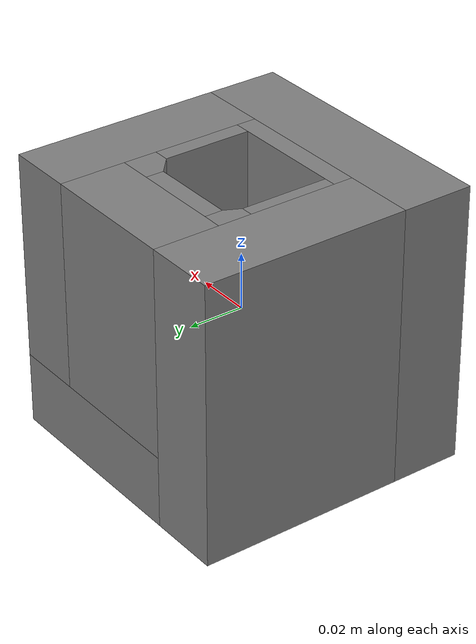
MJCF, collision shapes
<mujoco model="cuboid">
  <asset>
    <mesh file="meshes/cuboid.stl" name="cuboid_visual" scale="0.001 0.001 0.001"/>

    <mesh file="meshes/cuboid_convex_0.stl" name="cuboid_col_0" scale="0.001 0.001 0.001"/>
    <mesh file="meshes/cuboid_convex_1.stl" name="cuboid_col_1" scale="0.001 0.001 0.001"/>
    <mesh file="meshes/cuboid_convex_2.stl" name="cuboid_col_2" scale="0.001 0.001 0.001"/>
    <mesh file="meshes/cuboid_convex_3.stl" name="cuboid_col_3" scale="0.001 0.001 0.001"/>
    <mesh file="meshes/cuboid_convex_4.stl" name="cuboid_col_4" scale="0.001 0.001 0.001"/>
    <mesh file="meshes/cuboid_convex_5.stl" name="cuboid_col_5" scale="0.001 0.001 0.001"/>
    <mesh file="meshes/cuboid_convex_6.stl" name="cuboid_col_6" scale="0.001 0.001 0.001"/>
    <mesh file="meshes/cuboid_convex_7.stl" name="cuboid_col_7" scale="0.001 0.001 0.001"/>
    <mesh file="meshes/cuboid_convex_8.stl" name="cuboid_col_8" scale="0.001 0.001 0.001"/>
    <mesh file="meshes/cuboid_convex_9.stl" name="cuboid_col_9" scale="0.001 0.001 0.001"/>
    <mesh file="meshes/cuboid_convex_10.stl" name="cuboid_col_10" scale="0.001 0.001 0.001"/>
    <mesh file="meshes/cuboid_convex_11.stl" name="cuboid_col_11" scale="0.001 0.001 0.001"/>
    <mesh file="meshes/cuboid.stl" name="cuboid_mesh" scale="0.001 0.001 0.001"/>

  </asset>

  <worldbody>
    <body>
      <body name="object">
        <geom pos="0 0 0" mesh="cuboid_col_0" type="mesh" solimp="0.998 0.998 0.001" solref="0.001 1" density="50" friction="0.95 0.3 0.1" contype="1" conaffinity="1" group="0" condim="4"/>
        <geom pos="0 0 0" mesh="cuboid_col_1" type="mesh" solimp="0.998 0.998 0.001" solref="0.001 1" friction="0.95 0.3 0.1" contype="1" conaffinity="1" group="0" condim="4"/>
        <geom pos="0 0 0" mesh="cuboid_col_2" type="mesh" solimp="0.998 0.998 0.001" solref="0.001 1" friction="0.95 0.3 0.1" contype="1" conaffinity="1" group="0" condim="4"/>
        <geom pos="0 0 0" mesh="cuboid_col_3" type="mesh" solimp="0.998 0.998 0.001" solref="0.001 1" friction="0.95 0.3 0.1" contype="1" conaffinity="1" group="0" condim="4"/>
        <geom pos="0 0 0" mesh="cuboid_col_4" type="mesh" solimp="0.998 0.998 0.001" solref="0.001 1" friction="0.95 0.3 0.1" contype="1" conaffinity="1" group="0" condim="4"/>
        <geom pos="0 0 0" mesh="cuboid_col_5" type="mesh" solimp="0.998 0.998 0.001" solref="0.001 1" friction="0.95 0.3 0.1" contype="1" conaffinity="1" group="0" condim="4"/>
        <geom pos="0 0 0" mesh="cuboid_col_6" type="mesh" solimp="0.998 0.998 0.001" solref="0.001 1" friction="0.95 0.3 0.1" contype="1" conaffinity="1" group="0" condim="4"/>
        <geom pos="0 0 0" mesh="cuboid_col_7" type="mesh" solimp="0.998 0.998 0.001" solref="0.001 1" friction="0.95 0.3 0.1" contype="1" conaffinity="1" group="0" condim="4"/>
        <geom pos="0 0 0" mesh="cuboid_col_8" type="mesh" solimp="0.998 0.998 0.001" solref="0.001 1" friction="0.95 0.3 0.1" contype="1" conaffinity="1" group="0" condim="4"/>
        <geom pos="0 0 0" mesh="cuboid_col_9" type="mesh" solimp="0.998 0.998 0.001" solref="0.001 1" friction="0.95 0.3 0.1" contype="1" conaffinity="1" group="0" condim="4"/>
        <geom pos="0 0 0" mesh="cuboid_col_10" type="mesh" solimp="0.998 0.998 0.001" solref="0.001 1" friction="0.95 0.3 0.1" contype="1" conaffinity="1" group="0" condim="4"/>
        <geom pos="0 0 0" mesh="cuboid_col_11" type="mesh" solimp="0.998 0.998 0.001" solref="0.001 1" friction="0.95 0.3 0.1" contype="1" conaffinity="1" group="0" condim="4"/>
        <geom pos="0 0 0" mesh="cuboid_mesh" type="mesh"
          contype="0" conaffinity="0" group="0"
          rgba="0.8 0.8 0.8 1"/>
      </body>
      <site rgba="0 0 0 0" size="0.005" pos="0 0 -0.06" name="bottom_site"/>
      <site rgba="0 0 0 0" size="0.005" pos="0 0 0.04" name="top_site"/>
      <site rgba="0 0 0 0" size="0.005" pos="0.025 0.025 0" name="horizontal_radius_site"/>
    </body>
  </worldbody>
</mujoco>
